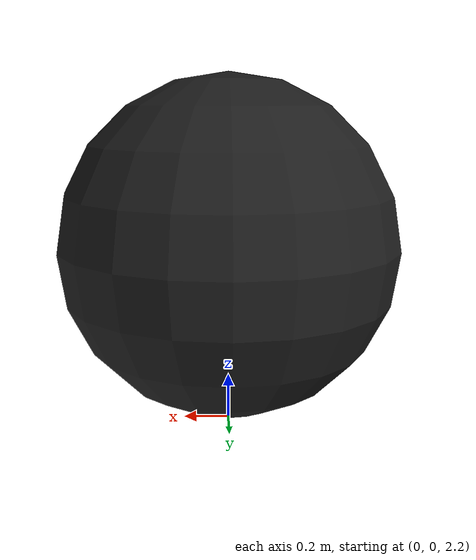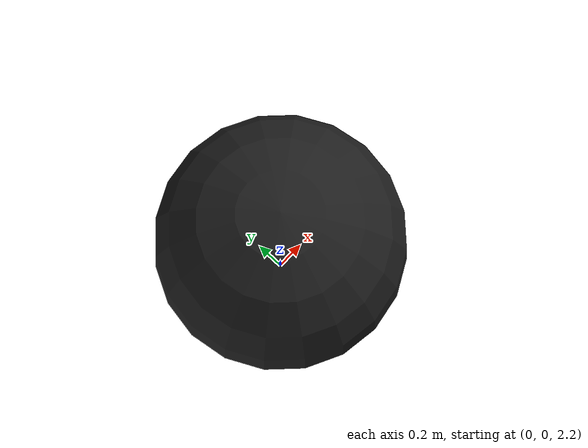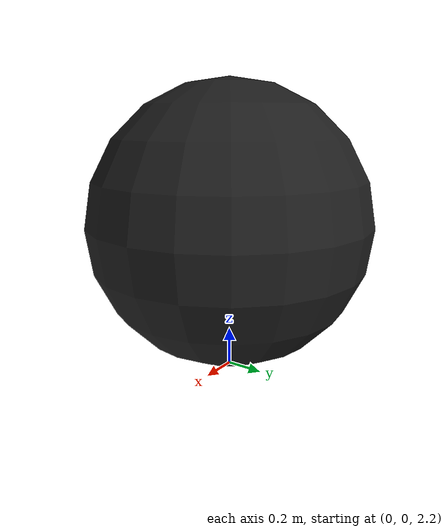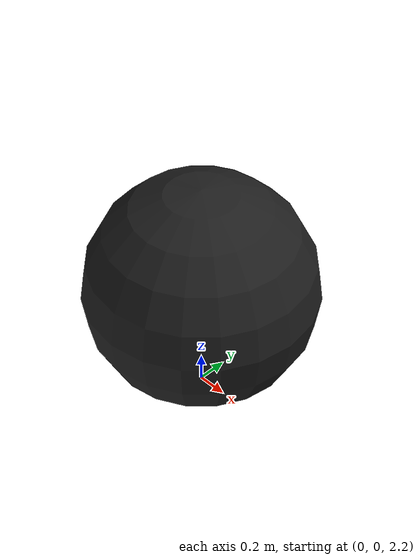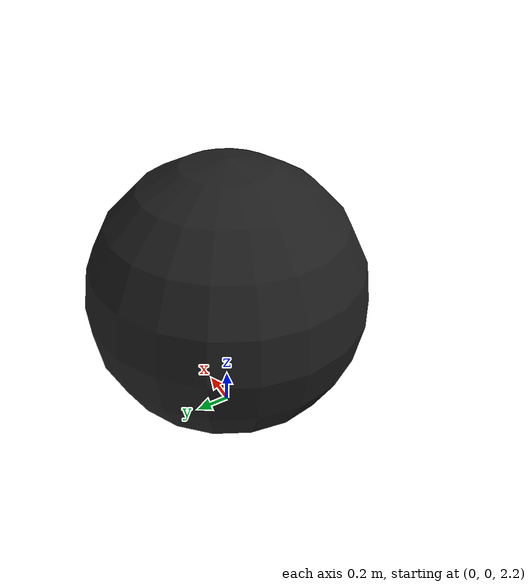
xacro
<?xml version="1.0"?>
<robot name="firstbot_ball" xmlns:xacro="http://www.ros.org/wiki/xacro">
  <xacro:property name="PI" value="3.1415926535897931"/>

  <xacro:property name="sphereRadius" value="0.5" />

  <xacro:property name="ballStartY" value="3.0" />
  <xacro:property name="ballStartZ" value="0" />
  <xacro:property name="ballRadius" value="0.75" />

  <xacro:include filename="$(find firstbot_description)/urdf/firstbot.gazebo" />
  <xacro:include filename="$(find firstbot_description)/urdf/materials.xacro" />
  <xacro:include filename="$(find firstbot_description)/urdf/macros.xacro" />

  <link name="footprint_ball" />

  <joint name="ball_joint" type="fixed">
    <parent link="footprint_ball"/>
    <child link="ball"/>
  </joint>

  <link name="ball">
    <collision>
      <origin xyz="0 ${ballStartZ} ${ballStartY}" rpy="0 0 0 "/>
      <geometry>
        <sphere radius="${ballRadius}"/>
      </geometry>
    </collision>
    <visual>
      <origin xyz="0 ${ballStartZ} ${ballStartY}" rpy="0 0 0 "/>
      <geometry>
        <sphere radius="${ballRadius}"/>
      </geometry>
      <material name="black"/>
    </visual>
    <inertial>
      <origin xyz="0 ${ballStartZ} ${ballStartY}" rpy="0 0 0 "/>
      <mass value="0.5" />
      <sphere_inertia m="0.5" r="${ballRadius}" />
    </inertial>
  </link>
</robot>

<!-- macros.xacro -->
<robot name="firstbot" xmlns:xacro="http://www.ros.org/wiki/xacro">
	<macro name="cylinder_inertia" params="m r h">
	  <inertia  ixx="${m*(3*r*r+h*h)/12}" ixy = "0" ixz = "0"
	    iyy="${m*(3*r*r+h*h)/12}" iyz = "0"
	    izz="${m*r*r/2}"
	  />
	</macro>

	<macro name="box_inertia" params="m x y z">
	  <inertia  ixx="${m*(y*y+z*z)/12}" ixy = "0" ixz = "0"
	    iyy="${m*(x*x+z*z)/12}" iyz = "0"
	    izz="${m*(x*x+z*z)/12}"
	  />
	</macro>

	<macro name="sphere_inertia" params="m r">
	  <inertia  ixx="${2*m*r*r/5}" ixy = "0" ixz = "0"
	    iyy="${2*m*r*r/5}" iyz = "0"
	    izz="${2*m*r*r/5}"
	  />
	</macro>
</robot>
